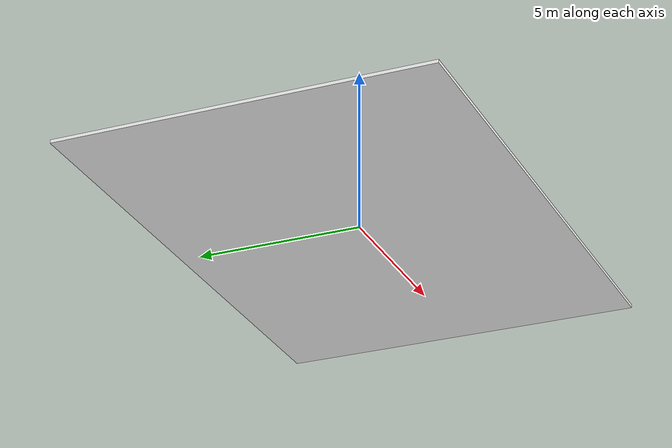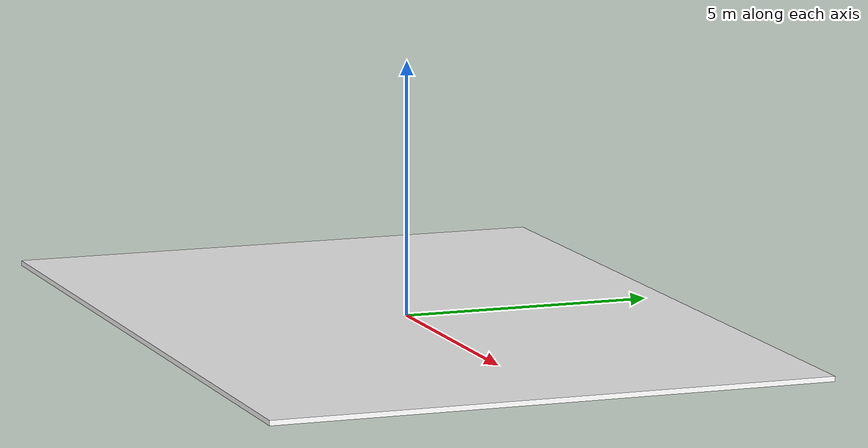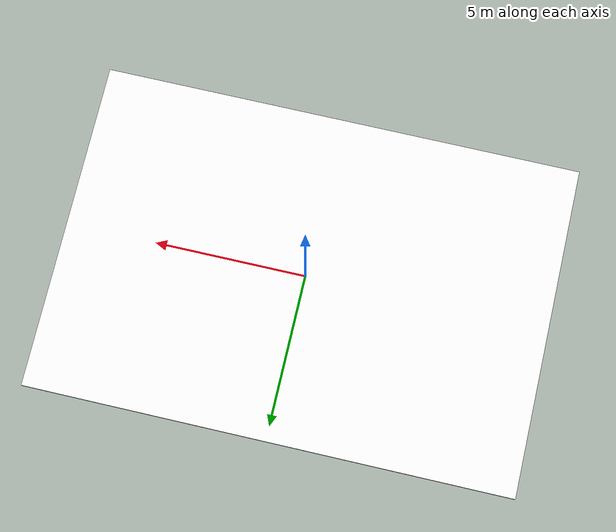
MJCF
<mujoco model="robocup_field">
  <asset>
    <texture
      name="robocup_field_tex"
      type="2d"
      file="campo_robo_cup-16x11.png"
    />
    <material
      name="robocup_field_mat"
      texture="robocup_field_tex"
      texrepeat="1 1"
      texuniform="true"
    />
  </asset>

  <worldbody>
    <body name="field">
      <geom
        name="ground"
        type="box"
        size="8 5.5 0.05"
        pos="0 0 -0.05"
        material="robocup_field_mat"
        rgba="1 1 1 1"
      />
    </body>
  </worldbody>
</mujoco>
